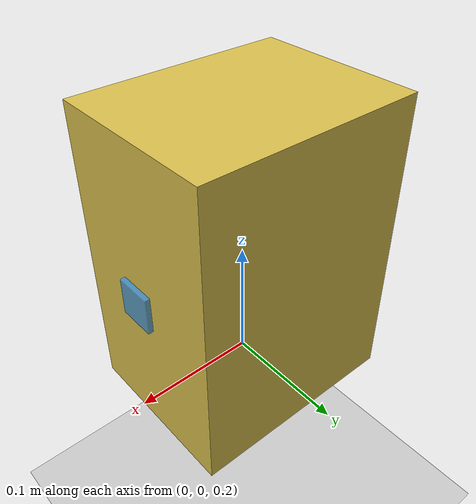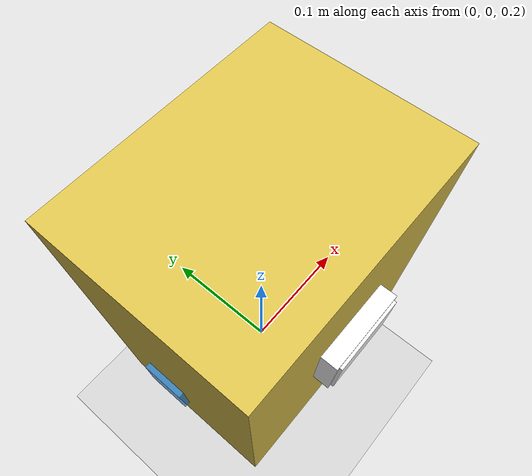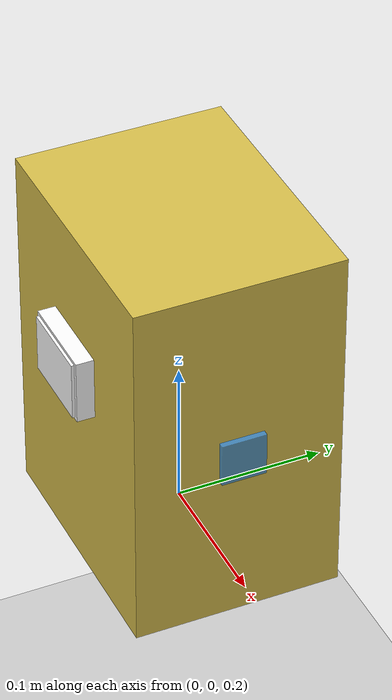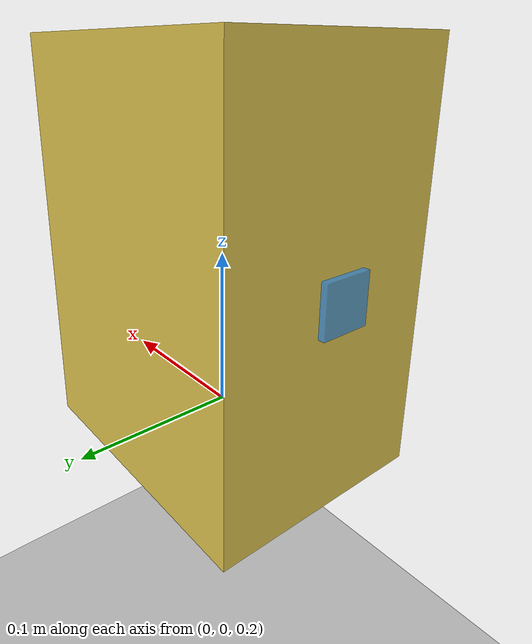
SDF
<?xml version="1.0"?>
<sdf version="1.9">
  <world name="orion_plugin_demo">

    <physics name="1ms" type="ignored">
      <max_step_size>0.001</max_step_size>
      <real_time_factor>1.0</real_time_factor>
    </physics>

    <plugin filename="gz-sim-physics-system"
            name="gz::sim::systems::Physics"/>
    <plugin filename="gz-sim-scene-broadcaster-system"
            name="gz::sim::systems::SceneBroadcaster"/>
    <plugin filename="gz-sim-user-commands-system"
            name="gz::sim::systems::UserCommands"/>

    <!-- Lighting -->
    <light type="directional" name="sun">
      <cast_shadows>true</cast_shadows>
      <pose>0 0 10 0 0 0</pose>
      <diffuse>0.8 0.8 0.8 1</diffuse>
      <specular>0.2 0.2 0.2 1</specular>
      <direction>-0.5 0.1 -0.9</direction>
    </light>

    <!-- Ground -->
    <model name="ground_plane">
      <static>true</static>
      <link name="link">
        <collision name="collision">
          <geometry><plane><normal>0 0 1</normal></plane></geometry>
        </collision>
        <visual name="visual">
          <geometry><plane><normal>0 0 1</normal><size>100 100</size></plane></geometry>
          <material><ambient>0.8 0.8 0.8 1</ambient><diffuse>0.8 0.8 0.8 1</diffuse></material>
        </visual>
      </link>
    </model>

    <model name="orion_demo">
      <static>true</static>
      <pose>0 0 0.3 0 0 0</pose>

      <!-- Body (placeholder box) -->
      <link name="body">
        <visual name="body_visual">
          <geometry><box><size>0.18 0.14 0.25</size></box></geometry>
          <material>
            <ambient>0.85 0.75 0.3 1</ambient>
            <diffuse>0.85 0.75 0.3 1</diffuse>
          </material>
        </visual>
        <collision name="body_col">
          <geometry><box><size>0.18 0.14 0.25</size></box></geometry>
        </collision>
      </link>

      <!-- ── Colour indicator (EmotionColorPlugin) — parent of screen ──── -->
      <!--
        Landscape prism: 60 mm wide × 12 mm deep × 44 mm tall.
        Body front face is at Y=−0.07; half-depth = 0.006 → centre at Y=−0.076.
      -->
      <link name="screen_color">
        <pose>0 -0.076 0.03 0 0 0</pose>
        <visual name="screen_color_visual">
          <geometry><box><size>0.060 0.012 0.044</size></box></geometry>
          <material>
            <ambient>1 1 1 1</ambient>
            <diffuse>1 1 1 1</diffuse>
            <emissive>0.25 0.25 0.25 1</emissive>
          </material>
        </visual>
      </link>
      <joint name="screen_color_joint" type="fixed">
        <parent>body</parent><child>screen_color</child>
      </joint>

      <!-- ── Texture screen (EmotionDisplayPlugin) — child of screen_color -->
      <link name="screen">
        <pose relative_to="screen_color">0 -0.007 0 0 0 0</pose>
        <visual name="screen_visual">
          <geometry><box><size>0.055 0.002 0.040</size></box></geometry>
          <material>
            <ambient>1 1 1 1</ambient>
            <diffuse>1 1 1 1</diffuse>
            <emissive>0.15 0.15 0.15 1</emissive>
          </material>
        </visual>
      </link>
      <joint name="screen_joint" type="fixed">
        <parent>screen_color</parent><child>screen</child>
      </joint>

      <!-- ── Touch sensor zones ─────────────────────────────────────────── -->
      <!-- Upper-left -->
      <link name="touch_ul">
        <pose>-0.055 0 0.11 0 0 0</pose>
        <visual name="touch_ul">
          <geometry><box><size>0.03 0.03 0.004</size></box></geometry>
          <material>
            <ambient>0.2 0.6 1.0 0.7</ambient>
            <diffuse>0.2 0.6 1.0 0.7</diffuse>
            <emissive>0 0.15 0.3 1</emissive>
          </material>
        </visual>
        <collision name="touch_ul_col">
          <geometry><box><size>0.03 0.03 0.004</size></box></geometry>
        </collision>
      </link>
      <joint name="touch_ul_joint" type="fixed">
        <parent>body</parent><child>touch_ul</child>
      </joint>

      <!-- Upper-right -->
      <link name="touch_ur">
        <pose>0.055 0 0.11 0 0 0</pose>
        <visual name="touch_ur">
          <geometry><box><size>0.03 0.03 0.004</size></box></geometry>
          <material>
            <ambient>0.2 0.6 1.0 0.7</ambient>
            <diffuse>0.2 0.6 1.0 0.7</diffuse>
            <emissive>0 0.15 0.3 1</emissive>
          </material>
        </visual>
        <collision name="touch_ur_col">
          <geometry><box><size>0.03 0.03 0.004</size></box></geometry>
        </collision>
      </link>
      <joint name="touch_ur_joint" type="fixed">
        <parent>body</parent><child>touch_ur</child>
      </joint>

      <!-- Lower-left (lateral) -->
      <link name="touch_ll">
        <pose>-0.095 0 0 0 0 0</pose>
        <visual name="touch_ll">
          <geometry><box><size>0.004 0.03 0.03</size></box></geometry>
          <material>
            <ambient>0.2 0.6 1.0 0.7</ambient>
            <diffuse>0.2 0.6 1.0 0.7</diffuse>
            <emissive>0 0.15 0.3 1</emissive>
          </material>
        </visual>
        <collision name="touch_ll_col">
          <geometry><box><size>0.004 0.03 0.03</size></box></geometry>
        </collision>
      </link>
      <joint name="touch_ll_joint" type="fixed">
        <parent>body</parent><child>touch_ll</child>
      </joint>

      <!-- Lower-right (lateral) -->
      <link name="touch_lr">
        <pose>0.095 0 0 0 0 0</pose>
        <visual name="touch_lr">
          <geometry><box><size>0.004 0.03 0.03</size></box></geometry>
          <material>
            <ambient>0.2 0.6 1.0 0.7</ambient>
            <diffuse>0.2 0.6 1.0 0.7</diffuse>
            <emissive>0 0.15 0.3 1</emissive>
          </material>
        </visual>
        <collision name="touch_lr_col">
          <geometry><box><size>0.004 0.03 0.03</size></box></geometry>
        </collision>
      </link>
      <joint name="touch_lr_joint" type="fixed">
        <parent>body</parent><child>touch_lr</child>
      </joint>

    </model>

    <!-- ═══════════════════════════════════════════════════════════════════
         GUI plugins
         ═══════════════════════════════════════════════════════════════════ -->
    <gui fullscreen="0">
      <plugin filename="MinimalScene" name="3D View">
        <gz-gui>
          <title>3D View</title>
          <property type="bool" key="showTitleBar">false</property>
          <property type="string" key="state">docked</property>
        </gz-gui>
        <engine>ogre2</engine>
        <scene>scene</scene>
        <ambient_light>0.4 0.4 0.4</ambient_light>
        <background_color>0.8 0.8 0.8</background_color>
        <camera_pose>0 -1.5 1.0 0 0.4 1.5708</camera_pose>
      </plugin>

      <plugin filename="GzSceneManager" name="Scene Manager">
        <gz-gui><property type="bool" key="showTitleBar">false</property></gz-gui>
      </plugin>

      <plugin filename="InteractiveViewControl" name="Interactive view control">
        <gz-gui><property type="bool" key="showTitleBar">false</property></gz-gui>
      </plugin>

      <!-- EmotionColorPlugin: solid colour on screen_color_visual -->
      <plugin filename="libEmotionColorPlugin.so" name="EmotionColorPlugin">
        <gz-gui>
          <property type="bool" key="showTitleBar">false</property>
          <property type="double" key="width">0</property>
          <property type="double" key="height">0</property>
        </gz-gui>
        <visual_name>screen_color_visual</visual_name>
      </plugin>

      <!-- EmotionDisplayPlugin: bitmap texture on screen_visual -->
      <plugin filename="libEmotionDisplayPlugin.so" name="EmotionDisplayPlugin">
        <gz-gui>
          <property type="bool" key="showTitleBar">false</property>
          <property type="double" key="width">0</property>
          <property type="double" key="height">0</property>
        </gz-gui>
        <visual_name>screen_visual</visual_name>
      </plugin>

      <!-- TouchSensorPlugin -->
      <plugin filename="libTouchSensorPlugin.so" name="TouchSensorPlugin">
        <gz-gui>
          <property type="bool" key="showTitleBar">false</property>
          <property type="double" key="width">0</property>
          <property type="double" key="height">0</property>
        </gz-gui>
        <debounce_ms>250</debounce_ms>
      </plugin>
    </gui>

  </world>
</sdf>
